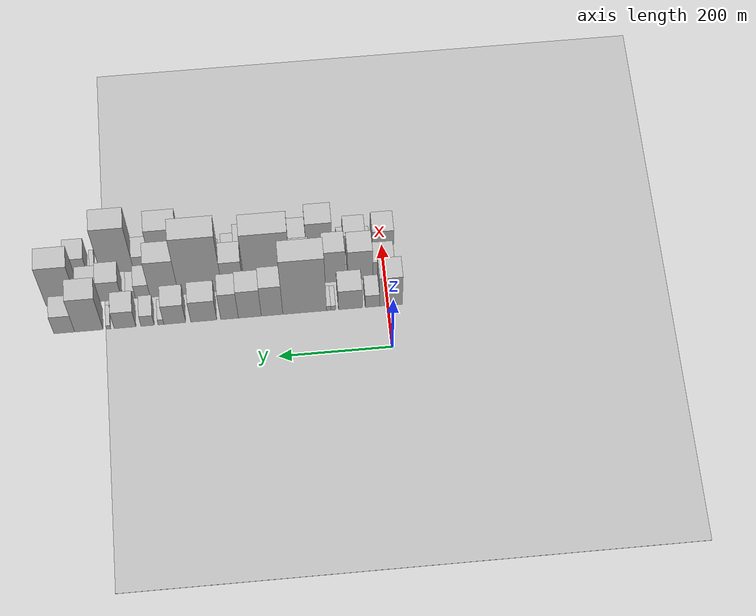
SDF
<sdf version="1.6">
 <world name="default">
  <include><name>ground_plane_1</name><uri>model://HANNAS_ground_plane</uri></include>
  <include>
   <name>ground_plane_2</name>
   <uri>model://HANNAS_ground_plane</uri>
   <pose>100 0 0  0 0 0</pose>
  </include>
  <model name="building_17">
   <static>1</static>
   <pose>100.0000 -5.4270 0 0.000000 0.000000 0.000000</pose>
   <link name="link">
    <pose>0 0 57.00 0 0 0</pose>
    <collision name="collision"><geometry><box><size>40.0000 40.4692 114.0000</size></box></geometry></collision>
    <visual name="visual">
     <cast_shadows>0</cast_shadows>
     <geometry><box><size>40.0000 40.4692 114.0000</size></box></geometry>
     <material>
      <script>
       <uri>model://HANNAS_wall/materials/scripts</uri>
       <uri>model://HANNAS_wall/materials/textures</uri>
       <name>vrc/HANNAS_wall</name>
      </script>
     </material>
    </visual>
   </link>
  </model>
  <model name="building_18">
   <static>1</static>
   <pose>100.0000 27.4994 0 0.000000 0.000000 0.000000</pose>
   <link name="link">
    <pose>0 0 24.00 0 0 0</pose>
    <collision name="collision"><geometry><box><size>40.0000 25.3837 48.0000</size></box></geometry></collision>
    <visual name="visual">
     <cast_shadows>0</cast_shadows>
     <geometry><box><size>40.0000 25.3837 48.0000</size></box></geometry>
     <material>
      <script>
       <uri>model://HANNAS_wall/materials/scripts</uri>
       <uri>model://HANNAS_wall/materials/textures</uri>
       <name>vrc/HANNAS_wall</name>
      </script>
     </material>
    </visual>
   </link>
  </model>
  <model name="building_19">
   <static>1</static>
   <pose>100.0000 66.5059 0 0.000000 0.000000 0.000000</pose>
   <link name="link">
    <pose>0 0 37.50 0 0 0</pose>
    <collision name="collision"><geometry><box><size>40.0000 42.6294 75.0000</size></box></geometry></collision>
    <visual name="visual">
     <cast_shadows>0</cast_shadows>
     <geometry><box><size>40.0000 42.6294 75.0000</size></box></geometry>
     <material>
      <script>
       <uri>model://HANNAS_wall/materials/scripts</uri>
       <uri>model://HANNAS_wall/materials/textures</uri>
       <name>vrc/HANNAS_wall</name>
      </script>
     </material>
    </visual>
   </link>
  </model>
  <model name="building_20">
   <static>1</static>
   <pose>100.0000 97.0517 0 0.000000 0.000000 0.000000</pose>
   <link name="link">
    <pose>0 0 9.00 0 0 0</pose>
    <collision name="collision"><geometry><box><size>40.0000 8.4620 18.0000</size></box></geometry></collision>
    <visual name="visual">
     <cast_shadows>0</cast_shadows>
     <geometry><box><size>40.0000 8.4620 18.0000</size></box></geometry>
     <material>
      <script>
       <uri>model://HANNAS_wall/materials/scripts</uri>
       <uri>model://HANNAS_wall/materials/textures</uri>
       <name>vrc/HANNAS_wall</name>
      </script>
     </material>
    </visual>
   </link>
  </model>
  <model name="building_21">
   <static>1</static>
   <pose>100.0000 105.2145 0 0.000000 0.000000 0.000000</pose>
   <link name="link">
    <pose>0 0 9.00 0 0 0</pose>
    <collision name="collision"><geometry><box><size>40.0000 7.8637 18.0000</size></box></geometry></collision>
    <visual name="visual">
     <cast_shadows>0</cast_shadows>
     <geometry><box><size>40.0000 7.8637 18.0000</size></box></geometry>
     <material>
      <script>
       <uri>model://HANNAS_wall/materials/scripts</uri>
       <uri>model://HANNAS_wall/materials/textures</uri>
       <name>vrc/HANNAS_wall</name>
      </script>
     </material>
    </visual>
   </link>
  </model>
  <model name="building_22">
   <static>1</static>
   <pose>100.0000 147.9191 0 0.000000 0.000000 0.000000</pose>
   <link name="link">
    <pose>0 0 106.50 0 0 0</pose>
    <collision name="collision"><geometry><box><size>40.0000 77.5454 213.0000</size></box></geometry></collision>
    <visual name="visual">
     <cast_shadows>0</cast_shadows>
     <geometry><box><size>40.0000 77.5454 213.0000</size></box></geometry>
     <material>
      <script>
       <uri>model://HANNAS_wall/materials/scripts</uri>
       <uri>model://HANNAS_wall/materials/textures</uri>
       <name>vrc/HANNAS_wall</name>
      </script>
     </material>
    </visual>
   </link>
  </model>
  <model name="building_23">
   <static>1</static>
   <pose>100.0000 205.8057 0 0.000000 0.000000 0.000000</pose>
   <link name="link">
    <pose>0 0 58.50 0 0 0</pose>
    <collision name="collision"><geometry><box><size>40.0000 38.2280 117.0000</size></box></geometry></collision>
    <visual name="visual">
     <cast_shadows>0</cast_shadows>
     <geometry><box><size>40.0000 38.2280 117.0000</size></box></geometry>
     <material>
      <script>
       <uri>model://HANNAS_wall/materials/scripts</uri>
       <uri>model://HANNAS_wall/materials/textures</uri>
       <name>vrc/HANNAS_wall</name>
      </script>
     </material>
    </visual>
   </link>
  </model>
  <model name="building_24">
   <static>1</static>
   <pose>100.0000 245.2790 0 0.000000 0.000000 0.000000</pose>
   <link name="link">
    <pose>0 0 54.00 0 0 0</pose>
    <collision name="collision"><geometry><box><size>40.0000 40.7185 108.0000</size></box></geometry></collision>
    <visual name="visual">
     <cast_shadows>0</cast_shadows>
     <geometry><box><size>40.0000 40.7185 108.0000</size></box></geometry>
     <material>
      <script>
       <uri>model://HANNAS_wall/materials/scripts</uri>
       <uri>model://HANNAS_wall/materials/textures</uri>
       <name>vrc/HANNAS_wall</name>
      </script>
     </material>
    </visual>
   </link>
  </model>
  <model name="building_25">
   <static>1</static>
   <pose>100.0000 281.2911 0 0.000000 0.000000 0.000000</pose>
   <link name="link">
    <pose>0 0 51.00 0 0 0</pose>
    <collision name="collision"><geometry><box><size>40.0000 31.3057 102.0000</size></box></geometry></collision>
    <visual name="visual">
     <cast_shadows>0</cast_shadows>
     <geometry><box><size>40.0000 31.3057 102.0000</size></box></geometry>
     <material>
      <script>
       <uri>model://HANNAS_wall/materials/scripts</uri>
       <uri>model://HANNAS_wall/materials/textures</uri>
       <name>vrc/HANNAS_wall</name>
      </script>
     </material>
    </visual>
   </link>
  </model>
  <model name="building_26">
   <static>1</static>
   <pose>100.0000 326.9286 0 0.000000 0.000000 0.000000</pose>
   <link name="link">
    <pose>0 0 40.50 0 0 0</pose>
    <collision name="collision"><geometry><box><size>40.0000 45.9691 81.0000</size></box></geometry></collision>
    <visual name="visual">
     <cast_shadows>0</cast_shadows>
     <geometry><box><size>40.0000 45.9691 81.0000</size></box></geometry>
     <material>
      <script>
       <uri>model://HANNAS_wall/materials/scripts</uri>
       <uri>model://HANNAS_wall/materials/textures</uri>
       <name>vrc/HANNAS_wall</name>
      </script>
     </material>
    </visual>
   </link>
  </model>
  <model name="building_27">
   <static>1</static>
   <pose>100.0000 378.2967 0 0.000000 0.000000 0.000000</pose>
   <link name="link">
    <pose>0 0 37.50 0 0 0</pose>
    <collision name="collision"><geometry><box><size>40.0000 38.7671 75.0000</size></box></geometry></collision>
    <visual name="visual">
     <cast_shadows>0</cast_shadows>
     <geometry><box><size>40.0000 38.7671 75.0000</size></box></geometry>
     <material>
      <script>
       <uri>model://HANNAS_wall/materials/scripts</uri>
       <uri>model://HANNAS_wall/materials/textures</uri>
       <name>vrc/HANNAS_wall</name>
      </script>
     </material>
    </visual>
   </link>
  </model>
  <model name="building_28">
   <static>1</static>
   <pose>100.0000 402.6422 0 0.000000 0.000000 0.000000</pose>
   <link name="link">
    <pose>0 0 10.50 0 0 0</pose>
    <collision name="collision"><geometry><box><size>40.0000 9.9240 21.0000</size></box></geometry></collision>
    <visual name="visual">
     <cast_shadows>0</cast_shadows>
     <geometry><box><size>40.0000 9.9240 21.0000</size></box></geometry>
     <material>
      <script>
       <uri>model://HANNAS_wall/materials/scripts</uri>
       <uri>model://HANNAS_wall/materials/textures</uri>
       <name>vrc/HANNAS_wall</name>
      </script>
     </material>
    </visual>
   </link>
  </model>
  <model name="building_29">
   <static>1</static>
   <pose>100.0000 426.2392 0 0.000000 0.000000 0.000000</pose>
   <link name="link">
    <pose>0 0 21.00 0 0 0</pose>
    <collision name="collision"><geometry><box><size>40.0000 23.2699 42.0000</size></box></geometry></collision>
    <visual name="visual">
     <cast_shadows>0</cast_shadows>
     <geometry><box><size>40.0000 23.2699 42.0000</size></box></geometry>
     <material>
      <script>
       <uri>model://HANNAS_wall/materials/scripts</uri>
       <uri>model://HANNAS_wall/materials/textures</uri>
       <name>vrc/HANNAS_wall</name>
      </script>
     </material>
    </visual>
   </link>
  </model>
  <model name="building_30">
   <static>1</static>
   <pose>100.0000 466.0563 0 0.000000 0.000000 0.000000</pose>
   <link name="link">
    <pose>0 0 33.00 0 0 0</pose>
    <collision name="collision"><geometry><box><size>40.0000 38.3643 66.0000</size></box></geometry></collision>
    <visual name="visual">
     <cast_shadows>0</cast_shadows>
     <geometry><box><size>40.0000 38.3643 66.0000</size></box></geometry>
     <material>
      <script>
       <uri>model://HANNAS_wall/materials/scripts</uri>
       <uri>model://HANNAS_wall/materials/textures</uri>
       <name>vrc/HANNAS_wall</name>
      </script>
     </material>
    </visual>
   </link>
  </model>
  <model name="building_31">
   <static>1</static>
   <pose>100.0000 494.9782 0 0.000000 0.000000 0.000000</pose>
   <link name="link">
    <pose>0 0 7.50 0 0 0</pose>
    <collision name="collision"><geometry><box><size>40.0000 7.4796 15.0000</size></box></geometry></collision>
    <visual name="visual">
     <cast_shadows>0</cast_shadows>
     <geometry><box><size>40.0000 7.4796 15.0000</size></box></geometry>
     <material>
      <script>
       <uri>model://HANNAS_wall/materials/scripts</uri>
       <uri>model://HANNAS_wall/materials/textures</uri>
       <name>vrc/HANNAS_wall</name>
      </script>
     </material>
    </visual>
   </link>
  </model>
  <model name="building_32">
   <static>1</static>
   <pose>100.0000 529.8098 0 0.000000 0.000000 0.000000</pose>
   <link name="link">
    <pose>0 0 66.00 0 0 0</pose>
    <collision name="collision"><geometry><box><size>40.0000 50.1836 132.0000</size></box></geometry></collision>
    <visual name="visual">
     <cast_shadows>0</cast_shadows>
     <geometry><box><size>40.0000 50.1836 132.0000</size></box></geometry>
     <material>
      <script>
       <uri>model://HANNAS_wall/materials/scripts</uri>
       <uri>model://HANNAS_wall/materials/textures</uri>
       <name>vrc/HANNAS_wall</name>
      </script>
     </material>
    </visual>
   </link>
  </model>
  <model name="building_33">
   <static>1</static>
   <pose>100.0000 573.1475 0 0.000000 0.000000 0.000000</pose>
   <link name="link">
    <pose>0 0 34.50 0 0 0</pose>
    <collision name="collision"><geometry><box><size>40.0000 36.4918 69.0000</size></box></geometry></collision>
    <visual name="visual">
     <cast_shadows>0</cast_shadows>
     <geometry><box><size>40.0000 36.4918 69.0000</size></box></geometry>
     <material>
      <script>
       <uri>model://HANNAS_wall/materials/scripts</uri>
       <uri>model://HANNAS_wall/materials/textures</uri>
       <name>vrc/HANNAS_wall</name>
      </script>
     </material>
    </visual>
   </link>
  </model>
  <model name="building_49">
   <static>1</static>
   <pose>155.0000 2.4951 0 0.000000 0.000000 0.000000</pose>
   <link name="link">
    <pose>0 0 33.00 0 0 0</pose>
    <collision name="collision"><geometry><box><size>40.0000 38.9385 66.0000</size></box></geometry></collision>
    <visual name="visual">
     <cast_shadows>0</cast_shadows>
     <geometry><box><size>40.0000 38.9385 66.0000</size></box></geometry>
     <material>
      <script>
       <uri>model://HANNAS_wall/materials/scripts</uri>
       <uri>model://HANNAS_wall/materials/textures</uri>
       <name>vrc/HANNAS_wall</name>
      </script>
     </material>
    </visual>
   </link>
  </model>
  <model name="building_50">
   <static>1</static>
   <pose>155.0000 44.1461 0 0.000000 0.000000 0.000000</pose>
   <link name="link">
    <pose>0 0 57.00 0 0 0</pose>
    <collision name="collision"><geometry><box><size>40.0000 44.3635 114.0000</size></box></geometry></collision>
    <visual name="visual">
     <cast_shadows>0</cast_shadows>
     <geometry><box><size>40.0000 44.3635 114.0000</size></box></geometry>
     <material>
      <script>
       <uri>model://HANNAS_wall/materials/scripts</uri>
       <uri>model://HANNAS_wall/materials/textures</uri>
       <name>vrc/HANNAS_wall</name>
      </script>
     </material>
    </visual>
   </link>
  </model>
  <model name="building_51">
   <static>1</static>
   <pose>155.0000 90.1031 0 0.000000 0.000000 0.000000</pose>
   <link name="link">
    <pose>0 0 60.00 0 0 0</pose>
    <collision name="collision"><geometry><box><size>40.0000 39.5505 120.0000</size></box></geometry></collision>
    <visual name="visual">
     <cast_shadows>0</cast_shadows>
     <geometry><box><size>40.0000 39.5505 120.0000</size></box></geometry>
     <material>
      <script>
       <uri>model://HANNAS_wall/materials/scripts</uri>
       <uri>model://HANNAS_wall/materials/textures</uri>
       <name>vrc/HANNAS_wall</name>
      </script>
     </material>
    </visual>
   </link>
  </model>
  <model name="building_52">
   <static>1</static>
   <pose>155.0000 121.1536 0 0.000000 0.000000 0.000000</pose>
   <link name="link">
    <pose>0 0 21.00 0 0 0</pose>
    <collision name="collision"><geometry><box><size>40.0000 22.5504 42.0000</size></box></geometry></collision>
    <visual name="visual">
     <cast_shadows>0</cast_shadows>
     <geometry><box><size>40.0000 22.5504 42.0000</size></box></geometry>
     <material>
      <script>
       <uri>model://HANNAS_wall/materials/scripts</uri>
       <uri>model://HANNAS_wall/materials/textures</uri>
       <name>vrc/HANNAS_wall</name>
      </script>
     </material>
    </visual>
   </link>
  </model>
  <model name="building_53">
   <static>1</static>
   <pose>155.0000 149.9112 0 0.000000 0.000000 0.000000</pose>
   <link name="link">
    <pose>0 0 54.00 0 0 0</pose>
    <collision name="collision"><geometry><box><size>40.0000 34.9647 108.0000</size></box></geometry></collision>
    <visual name="visual">
     <cast_shadows>0</cast_shadows>
     <geometry><box><size>40.0000 34.9647 108.0000</size></box></geometry>
     <material>
      <script>
       <uri>model://HANNAS_wall/materials/scripts</uri>
       <uri>model://HANNAS_wall/materials/textures</uri>
       <name>vrc/HANNAS_wall</name>
      </script>
     </material>
    </visual>
   </link>
  </model>
  <model name="building_54">
   <static>1</static>
   <pose>155.0000 208.5201 0 0.000000 0.000000 0.000000</pose>
   <link name="link">
    <pose>0 0 106.50 0 0 0</pose>
    <collision name="collision"><geometry><box><size>40.0000 82.2531 213.0000</size></box></geometry></collision>
    <visual name="visual">
     <cast_shadows>0</cast_shadows>
     <geometry><box><size>40.0000 82.2531 213.0000</size></box></geometry>
     <material>
      <script>
       <uri>model://HANNAS_wall/materials/scripts</uri>
       <uri>model://HANNAS_wall/materials/textures</uri>
       <name>vrc/HANNAS_wall</name>
      </script>
     </material>
    </visual>
   </link>
  </model>
  <model name="building_55">
   <static>1</static>
   <pose>155.0000 271.6360 0 0.000000 0.000000 0.000000</pose>
   <link name="link">
    <pose>0 0 57.00 0 0 0</pose>
    <collision name="collision"><geometry><box><size>40.0000 37.9787 114.0000</size></box></geometry></collision>
    <visual name="visual">
     <cast_shadows>0</cast_shadows>
     <geometry><box><size>40.0000 37.9787 114.0000</size></box></geometry>
     <material>
      <script>
       <uri>model://HANNAS_wall/materials/scripts</uri>
       <uri>model://HANNAS_wall/materials/textures</uri>
       <name>vrc/HANNAS_wall</name>
      </script>
     </material>
    </visual>
   </link>
  </model>
  <model name="building_56">
   <static>1</static>
   <pose>155.0000 329.6477 0 0.000000 0.000000 0.000000</pose>
   <link name="link">
    <pose>0 0 109.50 0 0 0</pose>
    <collision name="collision"><geometry><box><size>40.0000 78.0448 219.0000</size></box></geometry></collision>
    <visual name="visual">
     <cast_shadows>0</cast_shadows>
     <geometry><box><size>40.0000 78.0448 219.0000</size></box></geometry>
     <material>
      <script>
       <uri>model://HANNAS_wall/materials/scripts</uri>
       <uri>model://HANNAS_wall/materials/textures</uri>
       <name>vrc/HANNAS_wall</name>
      </script>
     </material>
    </visual>
   </link>
  </model>
  <model name="building_57">
   <static>1</static>
   <pose>155.0000 393.9776 0 0.000000 0.000000 0.000000</pose>
   <link name="link">
    <pose>0 0 69.00 0 0 0</pose>
    <collision name="collision"><geometry><box><size>40.0000 50.6150 138.0000</size></box></geometry></collision>
    <visual name="visual">
     <cast_shadows>0</cast_shadows>
     <geometry><box><size>40.0000 50.6150 138.0000</size></box></geometry>
     <material>
      <script>
       <uri>model://HANNAS_wall/materials/scripts</uri>
       <uri>model://HANNAS_wall/materials/textures</uri>
       <name>vrc/HANNAS_wall</name>
      </script>
     </material>
    </visual>
   </link>
  </model>
  <model name="building_58">
   <static>1</static>
   <pose>155.0000 432.3639 0 0.000000 0.000000 0.000000</pose>
   <link name="link">
    <pose>0 0 25.50 0 0 0</pose>
    <collision name="collision"><geometry><box><size>40.0000 26.1575 51.0000</size></box></geometry></collision>
    <visual name="visual">
     <cast_shadows>0</cast_shadows>
     <geometry><box><size>40.0000 26.1575 51.0000</size></box></geometry>
     <material>
      <script>
       <uri>model://HANNAS_wall/materials/scripts</uri>
       <uri>model://HANNAS_wall/materials/textures</uri>
       <name>vrc/HANNAS_wall</name>
      </script>
     </material>
    </visual>
   </link>
  </model>
  <model name="building_59">
   <static>1</static>
   <pose>155.0000 452.9784 0 0.000000 0.000000 0.000000</pose>
   <link name="link">
    <pose>0 0 15.00 0 0 0</pose>
    <collision name="collision"><geometry><box><size>40.0000 15.0715 30.0000</size></box></geometry></collision>
    <visual name="visual">
     <cast_shadows>0</cast_shadows>
     <geometry><box><size>40.0000 15.0715 30.0000</size></box></geometry>
     <material>
      <script>
       <uri>model://HANNAS_wall/materials/scripts</uri>
       <uri>model://HANNAS_wall/materials/textures</uri>
       <name>vrc/HANNAS_wall</name>
      </script>
     </material>
    </visual>
   </link>
  </model>
  <model name="building_60">
   <static>1</static>
   <pose>155.0000 489.3522 0 0.000000 0.000000 0.000000</pose>
   <link name="link">
    <pose>0 0 37.50 0 0 0</pose>
    <collision name="collision"><geometry><box><size>40.0000 39.6760 75.0000</size></box></geometry></collision>
    <visual name="visual">
     <cast_shadows>0</cast_shadows>
     <geometry><box><size>40.0000 39.6760 75.0000</size></box></geometry>
     <material>
      <script>
       <uri>model://HANNAS_wall/materials/scripts</uri>
       <uri>model://HANNAS_wall/materials/textures</uri>
       <name>vrc/HANNAS_wall</name>
      </script>
     </material>
    </visual>
   </link>
  </model>
  <model name="building_61">
   <static>1</static>
   <pose>155.0000 527.2222 0 0.000000 0.000000 0.000000</pose>
   <link name="link">
    <pose>0 0 33.00 0 0 0</pose>
    <collision name="collision"><geometry><box><size>40.0000 36.0640 66.0000</size></box></geometry></collision>
    <visual name="visual">
     <cast_shadows>0</cast_shadows>
     <geometry><box><size>40.0000 36.0640 66.0000</size></box></geometry>
     <material>
      <script>
       <uri>model://HANNAS_wall/materials/scripts</uri>
       <uri>model://HANNAS_wall/materials/textures</uri>
       <name>vrc/HANNAS_wall</name>
      </script>
     </material>
    </visual>
   </link>
  </model>
  <model name="building_62">
   <static>1</static>
   <pose>155.0000 576.1279 0 0.000000 0.000000 0.000000</pose>
   <link name="link">
    <pose>0 0 75.00 0 0 0</pose>
    <collision name="collision"><geometry><box><size>40.0000 55.7476 150.0000</size></box></geometry></collision>
    <visual name="visual">
     <cast_shadows>0</cast_shadows>
     <geometry><box><size>40.0000 55.7476 150.0000</size></box></geometry>
     <material>
      <script>
       <uri>model://HANNAS_wall/materials/scripts</uri>
       <uri>model://HANNAS_wall/materials/textures</uri>
       <name>vrc/HANNAS_wall</name>
      </script>
     </material>
    </visual>
   </link>
  </model>
  <model name="building_81">
   <static>1</static>
   <pose>210.0000 -1.6142 0 0.000000 0.000000 0.000000</pose>
   <link name="link">
    <pose>0 0 37.50 0 0 0</pose>
    <collision name="collision"><geometry><box><size>40.0000 38.5492 75.0000</size></box></geometry></collision>
    <visual name="visual">
     <cast_shadows>0</cast_shadows>
     <geometry><box><size>40.0000 38.5492 75.0000</size></box></geometry>
     <material>
      <script>
       <uri>model://HANNAS_wall/materials/scripts</uri>
       <uri>model://HANNAS_wall/materials/textures</uri>
       <name>vrc/HANNAS_wall</name>
      </script>
     </material>
    </visual>
   </link>
  </model>
  <model name="building_82">
   <static>1</static>
   <pose>210.0000 25.9447 0 0.000000 0.000000 0.000000</pose>
   <link name="link">
    <pose>0 0 10.50 0 0 0</pose>
    <collision name="collision"><geometry><box><size>40.0000 8.5685 21.0000</size></box></geometry></collision>
    <visual name="visual">
     <cast_shadows>0</cast_shadows>
     <geometry><box><size>40.0000 8.5685 21.0000</size></box></geometry>
     <material>
      <script>
       <uri>model://HANNAS_wall/materials/scripts</uri>
       <uri>model://HANNAS_wall/materials/textures</uri>
       <name>vrc/HANNAS_wall</name>
      </script>
     </material>
    </visual>
   </link>
  </model>
  <model name="building_83">
   <static>1</static>
   <pose>210.0000 49.4409 0 0.000000 0.000000 0.000000</pose>
   <link name="link">
    <pose>0 0 34.50 0 0 0</pose>
    <collision name="collision"><geometry><box><size>40.0000 38.4240 69.0000</size></box></geometry></collision>
    <visual name="visual">
     <cast_shadows>0</cast_shadows>
     <geometry><box><size>40.0000 38.4240 69.0000</size></box></geometry>
     <material>
      <script>
       <uri>model://HANNAS_wall/materials/scripts</uri>
       <uri>model://HANNAS_wall/materials/textures</uri>
       <name>vrc/HANNAS_wall</name>
      </script>
     </material>
    </visual>
   </link>
  </model>
  <model name="building_84">
   <static>1</static>
   <pose>210.0000 74.4827 0 0.000000 0.000000 0.000000</pose>
   <link name="link">
    <pose>0 0 13.50 0 0 0</pose>
    <collision name="collision"><geometry><box><size>40.0000 11.6597 27.0000</size></box></geometry></collision>
    <visual name="visual">
     <cast_shadows>0</cast_shadows>
     <geometry><box><size>40.0000 11.6597 27.0000</size></box></geometry>
     <material>
      <script>
       <uri>model://HANNAS_wall/materials/scripts</uri>
       <uri>model://HANNAS_wall/materials/textures</uri>
       <name>vrc/HANNAS_wall</name>
      </script>
     </material>
    </visual>
   </link>
  </model>
  <model name="building_85">
   <static>1</static>
   <pose>210.0000 112.6985 0 0.000000 0.000000 0.000000</pose>
   <link name="link">
    <pose>0 0 63.00 0 0 0</pose>
    <collision name="collision"><geometry><box><size>40.0000 46.7719 126.0000</size></box></geometry></collision>
    <visual name="visual">
     <cast_shadows>0</cast_shadows>
     <geometry><box><size>40.0000 46.7719 126.0000</size></box></geometry>
     <material>
      <script>
       <uri>model://HANNAS_wall/materials/scripts</uri>
       <uri>model://HANNAS_wall/materials/textures</uri>
       <name>vrc/HANNAS_wall</name>
      </script>
     </material>
    </visual>
   </link>
  </model>
  <model name="building_86">
   <static>1</static>
   <pose>210.0000 156.8260 0 0.000000 0.000000 0.000000</pose>
   <link name="link">
    <pose>0 0 39.00 0 0 0</pose>
    <collision name="collision"><geometry><box><size>40.0000 41.4829 78.0000</size></box></geometry></collision>
    <visual name="visual">
     <cast_shadows>0</cast_shadows>
     <geometry><box><size>40.0000 41.4829 78.0000</size></box></geometry>
     <material>
      <script>
       <uri>model://HANNAS_wall/materials/scripts</uri>
       <uri>model://HANNAS_wall/materials/textures</uri>
       <name>vrc/HANNAS_wall</name>
      </script>
     </material>
    </visual>
   </link>
  </model>
  <model name="building_87">
   <static>1</static>
   <pose>210.0000 200.7330 0 0.000000 0.000000 0.000000</pose>
   <link name="link">
    <pose>0 0 43.50 0 0 0</pose>
    <collision name="collision"><geometry><box><size>40.0000 46.3311 87.0000</size></box></geometry></collision>
    <visual name="visual">
     <cast_shadows>0</cast_shadows>
     <geometry><box><size>40.0000 46.3311 87.0000</size></box></geometry>
     <material>
      <script>
       <uri>model://HANNAS_wall/materials/scripts</uri>
       <uri>model://HANNAS_wall/materials/textures</uri>
       <name>vrc/HANNAS_wall</name>
      </script>
     </material>
    </visual>
   </link>
  </model>
  <model name="building_88">
   <static>1</static>
   <pose>210.0000 244.0291 0 0.000000 0.000000 0.000000</pose>
   <link name="link">
    <pose>0 0 36.00 0 0 0</pose>
    <collision name="collision"><geometry><box><size>40.0000 40.2612 72.0000</size></box></geometry></collision>
    <visual name="visual">
     <cast_shadows>0</cast_shadows>
     <geometry><box><size>40.0000 40.2612 72.0000</size></box></geometry>
     <material>
      <script>
       <uri>model://HANNAS_wall/materials/scripts</uri>
       <uri>model://HANNAS_wall/materials/textures</uri>
       <name>vrc/HANNAS_wall</name>
      </script>
     </material>
    </visual>
   </link>
  </model>
  <model name="building_89">
   <static>1</static>
   <pose>210.0000 275.7129 0 0.000000 0.000000 0.000000</pose>
   <link name="link">
    <pose>0 0 19.50 0 0 0</pose>
    <collision name="collision"><geometry><box><size>40.0000 23.1064 39.0000</size></box></geometry></collision>
    <visual name="visual">
     <cast_shadows>0</cast_shadows>
     <geometry><box><size>40.0000 23.1064 39.0000</size></box></geometry>
     <material>
      <script>
       <uri>model://HANNAS_wall/materials/scripts</uri>
       <uri>model://HANNAS_wall/materials/textures</uri>
       <name>vrc/HANNAS_wall</name>
      </script>
     </material>
    </visual>
   </link>
  </model>
  <model name="building_90">
   <static>1</static>
   <pose>210.0000 297.6463 0 0.000000 0.000000 0.000000</pose>
   <link name="link">
    <pose>0 0 9.00 0 0 0</pose>
    <collision name="collision"><geometry><box><size>40.0000 8.7603 18.0000</size></box></geometry></collision>
    <visual name="visual">
     <cast_shadows>0</cast_shadows>
     <geometry><box><size>40.0000 8.7603 18.0000</size></box></geometry>
     <material>
      <script>
       <uri>model://HANNAS_wall/materials/scripts</uri>
       <uri>model://HANNAS_wall/materials/textures</uri>
       <name>vrc/HANNAS_wall</name>
      </script>
     </material>
    </visual>
   </link>
  </model>
  <model name="building_91">
   <static>1</static>
   <pose>210.0000 321.3708 0 0.000000 0.000000 0.000000</pose>
   <link name="link">
    <pose>0 0 36.00 0 0 0</pose>
    <collision name="collision"><geometry><box><size>40.0000 38.6886 72.0000</size></box></geometry></collision>
    <visual name="visual">
     <cast_shadows>0</cast_shadows>
     <geometry><box><size>40.0000 38.6886 72.0000</size></box></geometry>
     <material>
      <script>
       <uri>model://HANNAS_wall/materials/scripts</uri>
       <uri>model://HANNAS_wall/materials/textures</uri>
       <name>vrc/HANNAS_wall</name>
      </script>
     </material>
    </visual>
   </link>
  </model>
  <model name="building_92">
   <static>1</static>
   <pose>210.0000 346.2241 0 0.000000 0.000000 0.000000</pose>
   <link name="link">
    <pose>0 0 12.00 0 0 0</pose>
    <collision name="collision"><geometry><box><size>40.0000 11.0179 24.0000</size></box></geometry></collision>
    <visual name="visual">
     <cast_shadows>0</cast_shadows>
     <geometry><box><size>40.0000 11.0179 24.0000</size></box></geometry>
     <material>
      <script>
       <uri>model://HANNAS_wall/materials/scripts</uri>
       <uri>model://HANNAS_wall/materials/textures</uri>
       <name>vrc/HANNAS_wall</name>
      </script>
     </material>
    </visual>
   </link>
  </model>
  <model name="building_93">
   <static>1</static>
   <pose>210.0000 387.0645 0 0.000000 0.000000 0.000000</pose>
   <link name="link">
    <pose>0 0 75.00 0 0 0</pose>
    <collision name="collision"><geometry><box><size>40.0000 54.6628 150.0000</size></box></geometry></collision>
    <visual name="visual">
     <cast_shadows>0</cast_shadows>
     <geometry><box><size>40.0000 54.6628 150.0000</size></box></geometry>
     <material>
      <script>
       <uri>model://HANNAS_wall/materials/scripts</uri>
       <uri>model://HANNAS_wall/materials/textures</uri>
       <name>vrc/HANNAS_wall</name>
      </script>
     </material>
    </visual>
   </link>
  </model>
  <model name="building_94">
   <static>1</static>
   <pose>210.0000 430.3559 0 0.000000 0.000000 0.000000</pose>
   <link name="link">
    <pose>0 0 27.00 0 0 0</pose>
    <collision name="collision"><geometry><box><size>40.0000 31.9201 54.0000</size></box></geometry></collision>
    <visual name="visual">
     <cast_shadows>0</cast_shadows>
     <geometry><box><size>40.0000 31.9201 54.0000</size></box></geometry>
     <material>
      <script>
       <uri>model://HANNAS_wall/materials/scripts</uri>
       <uri>model://HANNAS_wall/materials/textures</uri>
       <name>vrc/HANNAS_wall</name>
      </script>
     </material>
    </visual>
   </link>
  </model>
  <model name="building_95">
   <static>1</static>
   <pose>210.0000 476.0511 0 0.000000 0.000000 0.000000</pose>
   <link name="link">
    <pose>0 0 85.50 0 0 0</pose>
    <collision name="collision"><geometry><box><size>40.0000 59.4703 171.0000</size></box></geometry></collision>
    <visual name="visual">
     <cast_shadows>0</cast_shadows>
     <geometry><box><size>40.0000 59.4703 171.0000</size></box></geometry>
     <material>
      <script>
       <uri>model://HANNAS_wall/materials/scripts</uri>
       <uri>model://HANNAS_wall/materials/textures</uri>
       <name>vrc/HANNAS_wall</name>
      </script>
     </material>
    </visual>
   </link>
  </model>
  <model name="building_96">
   <static>1</static>
   <pose>210.0000 519.9636 0 0.000000 0.000000 0.000000</pose>
   <link name="link">
    <pose>0 0 9.00 0 0 0</pose>
    <collision name="collision"><geometry><box><size>40.0000 8.3547 18.0000</size></box></geometry></collision>
    <visual name="visual">
     <cast_shadows>0</cast_shadows>
     <geometry><box><size>40.0000 8.3547 18.0000</size></box></geometry>
     <material>
      <script>
       <uri>model://HANNAS_wall/materials/scripts</uri>
       <uri>model://HANNAS_wall/materials/textures</uri>
       <name>vrc/HANNAS_wall</name>
      </script>
     </material>
    </visual>
   </link>
  </model>
  <model name="building_97">
   <static>1</static>
   <pose>210.0000 547.5383 0 0.000000 0.000000 0.000000</pose>
   <link name="link">
    <pose>0 0 33.00 0 0 0</pose>
    <collision name="collision"><geometry><box><size>40.0000 36.7946 66.0000</size></box></geometry></collision>
    <visual name="visual">
     <cast_shadows>0</cast_shadows>
     <geometry><box><size>40.0000 36.7946 66.0000</size></box></geometry>
     <material>
      <script>
       <uri>model://HANNAS_wall/materials/scripts</uri>
       <uri>model://HANNAS_wall/materials/textures</uri>
       <name>vrc/HANNAS_wall</name>
      </script>
     </material>
    </visual>
   </link>
  </model>
 </world>
</sdf>
